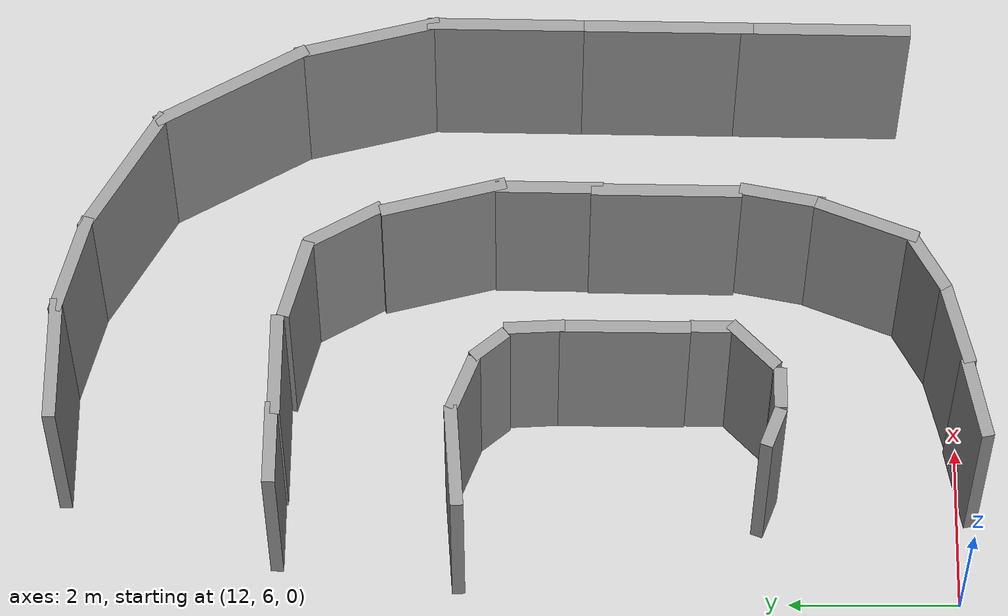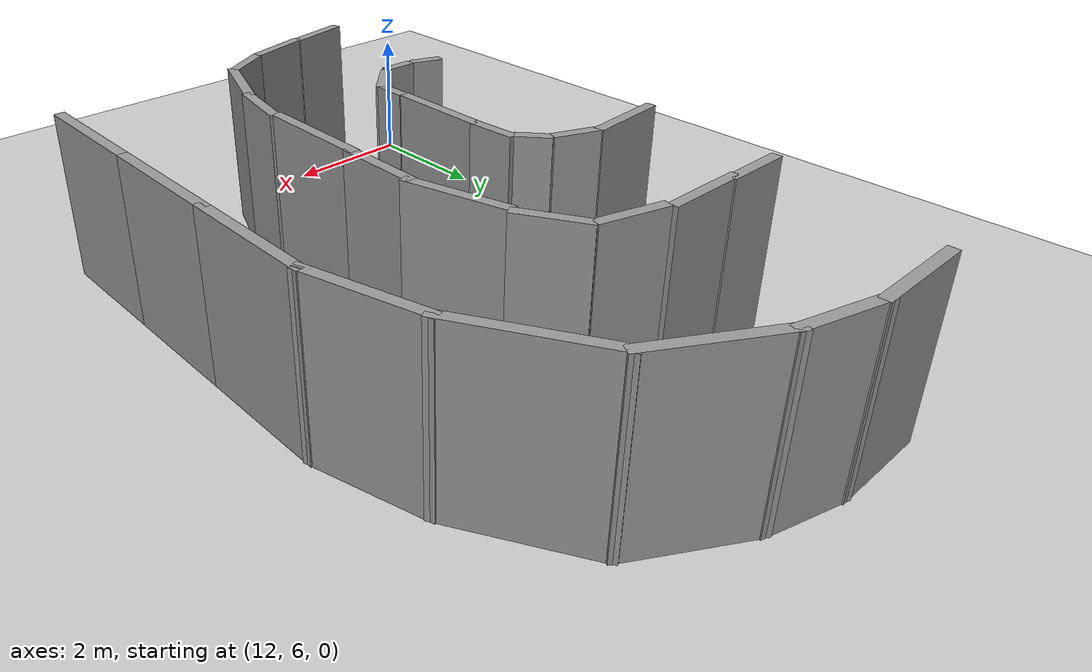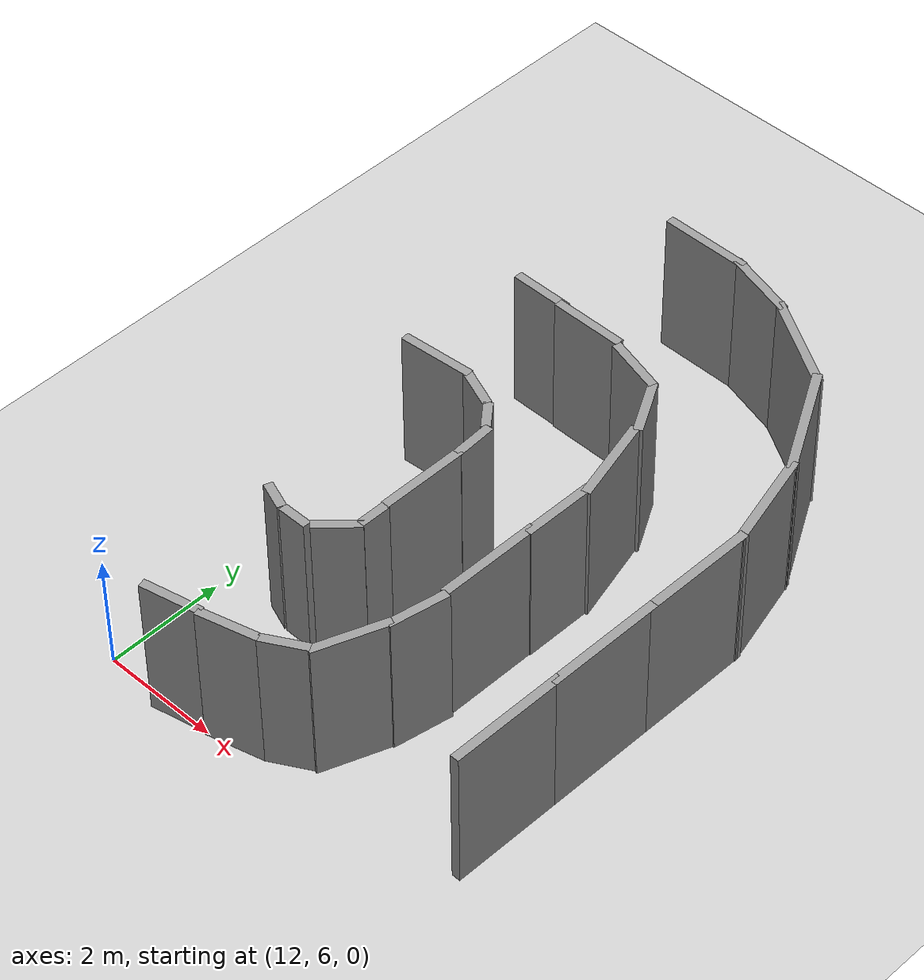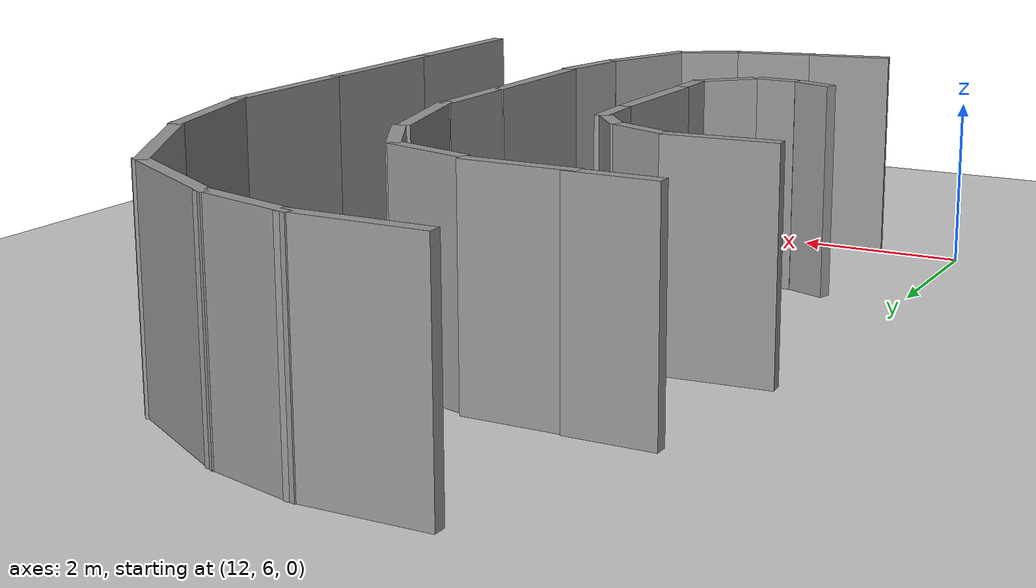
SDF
<sdf version="1.6">
 <world name="default">
  <model name="ground_plane">
   <static>1</static>
   <link name="link">
    <collision name="collision">
     <geometry><plane><normal>0 0 1</normal><size>100 100</size></plane></geometry>
     <surface><friction><ode><mu>100</mu><mu2>50</mu2></ode></friction></surface>
    </collision>
    <visual name="visual">
     <cast_shadows>0</cast_shadows>
     <geometry><plane><normal>0 0 1</normal><size>100 100</size></plane></geometry>
     <material>
      <script><uri>file://media/materials/scripts/gazebo.material</uri><name>Gazebo/Grey</name></script>
     </material>
    </visual>
   </link>
  </model>
  <model name="c-Snail_v3_clone">
   <link name="Wall_29">
    <pose>10.2991 1.24294 0 0 -0 1.5708</pose>
    <visual name="Wall_29_Visual">
     <pose>0 0 1.25 0 -0 0</pose>
     <geometry><box><size>1.5 0.15 2.5</size></box></geometry>
     <material>
      <script><uri>file://media/materials/scripts/gazebo.material</uri><name>Gazebo/Grey</name></script>
      <ambient>1 1 1 1</ambient>
     </material>
     <meta><layer>0</layer></meta>
    </visual>
    <collision name="Wall_29_Collision">
     <pose>0 0 1.25 0 -0 0</pose>
     <geometry><box><size>1.5 0.15 2.5</size></box></geometry>
     <surface>
      <friction>
       <ode><mu>1</mu><mu2>1</mu2><fdir1>0 0 0</fdir1><slip1>0</slip1><slip2>0</slip2></ode>
       <torsional>
        <coefficient>1</coefficient>
        <patch_radius>0</patch_radius>
        <surface_radius>0</surface_radius>
        <use_patch_radius>1</use_patch_radius>
        <ode><slip>0</slip></ode>
       </torsional>
      </friction>
      <bounce><restitution_coefficient>0</restitution_coefficient><threshold>1e+06</threshold></bounce>
      <contact>
       <collide_without_contact>0</collide_without_contact>
       <collide_without_contact_bitmask>1</collide_without_contact_bitmask>
       <collide_bitmask>1</collide_bitmask>
       <ode>
        <soft_cfm>0</soft_cfm>
        <soft_erp>0.2</soft_erp>
        <kp>1e+13</kp>
        <kd>1</kd>
        <max_vel>0.01</max_vel>
        <min_depth>0</min_depth>
       </ode>
       <bullet>
        <split_impulse>1</split_impulse>
        <split_impulse_penetration_threshold>-0.01</split_impulse_penetration_threshold>
        <soft_cfm>0</soft_cfm>
        <soft_erp>0.2</soft_erp>
        <kp>1e+13</kp>
        <kd>1</kd>
       </bullet>
      </contact>
     </surface>
    </collision>
   </link>
   <link name="Wall_30">
    <pose>10.1568 2.4492 0 0 -0 1.8326</pose>
    <visual name="Wall_30_Visual">
     <pose>0 0 1.25 0 -0 0</pose>
     <geometry><box><size>1.25 0.15 2.5</size></box></geometry>
     <material>
      <script><uri>file://media/materials/scripts/gazebo.material</uri><name>Gazebo/Grey</name></script>
      <ambient>1 1 1 1</ambient>
     </material>
     <meta><layer>0</layer></meta>
    </visual>
    <collision name="Wall_30_Collision">
     <pose>0 0 1.25 0 -0 0</pose>
     <geometry><box><size>1.25 0.15 2.5</size></box></geometry>
     <surface>
      <friction>
       <ode><mu>1</mu><mu2>1</mu2><fdir1>0 0 0</fdir1><slip1>0</slip1><slip2>0</slip2></ode>
       <torsional>
        <coefficient>1</coefficient>
        <patch_radius>0</patch_radius>
        <surface_radius>0</surface_radius>
        <use_patch_radius>1</use_patch_radius>
        <ode><slip>0</slip></ode>
       </torsional>
      </friction>
      <bounce><restitution_coefficient>0</restitution_coefficient><threshold>1e+06</threshold></bounce>
      <contact>
       <collide_without_contact>0</collide_without_contact>
       <collide_without_contact_bitmask>1</collide_without_contact_bitmask>
       <collide_bitmask>1</collide_bitmask>
       <ode>
        <soft_cfm>0</soft_cfm>
        <soft_erp>0.2</soft_erp>
        <kp>1e+13</kp>
        <kd>1</kd>
        <max_vel>0.01</max_vel>
        <min_depth>0</min_depth>
       </ode>
       <bullet>
        <split_impulse>1</split_impulse>
        <split_impulse_penetration_threshold>-0.01</split_impulse_penetration_threshold>
        <soft_cfm>0</soft_cfm>
        <soft_erp>0.2</soft_erp>
        <kp>1e+13</kp>
        <kd>1</kd>
       </bullet>
      </contact>
     </surface>
    </collision>
   </link>
   <link name="Wall_31">
    <pose>9.61441 3.67328 0 0 -0 2.0944</pose>
    <visual name="Wall_31_Visual">
     <pose>0 0 1.25 0 -0 0</pose>
     <geometry><box><size>1.75 0.15 2.5</size></box></geometry>
     <material>
      <script><uri>file://media/materials/scripts/gazebo.material</uri><name>Gazebo/Grey</name></script>
      <ambient>1 1 1 1</ambient>
     </material>
     <meta><layer>0</layer></meta>
    </visual>
    <collision name="Wall_31_Collision">
     <pose>0 0 1.25 0 -0 0</pose>
     <geometry><box><size>1.75 0.15 2.5</size></box></geometry>
     <surface>
      <friction>
       <ode><mu>1</mu><mu2>1</mu2><fdir1>0 0 0</fdir1><slip1>0</slip1><slip2>0</slip2></ode>
       <torsional>
        <coefficient>1</coefficient>
        <patch_radius>0</patch_radius>
        <surface_radius>0</surface_radius>
        <use_patch_radius>1</use_patch_radius>
        <ode><slip>0</slip></ode>
       </torsional>
      </friction>
      <bounce><restitution_coefficient>0</restitution_coefficient><threshold>1e+06</threshold></bounce>
      <contact>
       <collide_without_contact>0</collide_without_contact>
       <collide_without_contact_bitmask>1</collide_without_contact_bitmask>
       <collide_bitmask>1</collide_bitmask>
       <ode>
        <soft_cfm>0</soft_cfm>
        <soft_erp>0.2</soft_erp>
        <kp>1e+13</kp>
        <kd>1</kd>
        <max_vel>0.01</max_vel>
        <min_depth>0</min_depth>
       </ode>
       <bullet>
        <split_impulse>1</split_impulse>
        <split_impulse_penetration_threshold>-0.01</split_impulse_penetration_threshold>
        <soft_cfm>0</soft_cfm>
        <soft_erp>0.2</soft_erp>
        <kp>1e+13</kp>
        <kd>1</kd>
       </bullet>
      </contact>
     </surface>
    </collision>
   </link>
   <link name="Wall_32">
    <pose>8.41334 4.8286 0 0 -0 2.61799</pose>
    <visual name="Wall_32_Visual">
     <pose>0 0 1.25 0 -0 0</pose>
     <geometry><box><size>2 0.15 2.5</size></box></geometry>
     <material>
      <script><uri>file://media/materials/scripts/gazebo.material</uri><name>Gazebo/Grey</name></script>
      <ambient>1 1 1 1</ambient>
     </material>
     <meta><layer>0</layer></meta>
    </visual>
    <collision name="Wall_32_Collision">
     <pose>0 0 1.25 0 -0 0</pose>
     <geometry><box><size>2 0.15 2.5</size></box></geometry>
     <surface>
      <friction>
       <ode><mu>1</mu><mu2>1</mu2><fdir1>0 0 0</fdir1><slip1>0</slip1><slip2>0</slip2></ode>
       <torsional>
        <coefficient>1</coefficient>
        <patch_radius>0</patch_radius>
        <surface_radius>0</surface_radius>
        <use_patch_radius>1</use_patch_radius>
        <ode><slip>0</slip></ode>
       </torsional>
      </friction>
      <bounce><restitution_coefficient>0</restitution_coefficient><threshold>1e+06</threshold></bounce>
      <contact>
       <collide_without_contact>0</collide_without_contact>
       <collide_without_contact_bitmask>1</collide_without_contact_bitmask>
       <collide_bitmask>1</collide_bitmask>
       <ode>
        <soft_cfm>0</soft_cfm>
        <soft_erp>0.2</soft_erp>
        <kp>1e+13</kp>
        <kd>1</kd>
        <max_vel>0.01</max_vel>
        <min_depth>0</min_depth>
       </ode>
       <bullet>
        <split_impulse>1</split_impulse>
        <split_impulse_penetration_threshold>-0.01</split_impulse_penetration_threshold>
        <soft_cfm>0</soft_cfm>
        <soft_erp>0.2</soft_erp>
        <kp>1e+13</kp>
        <kd>1</kd>
       </bullet>
      </contact>
     </surface>
    </collision>
   </link>
   <link name="Wall_33">
    <pose>6.83952 5.49815 0 0 -0 2.87979</pose>
    <visual name="Wall_33_Visual">
     <pose>0 0 1.25 0 -0 0</pose>
     <geometry><box><size>1.75 0.15 2.5</size></box></geometry>
     <material>
      <script><uri>file://media/materials/scripts/gazebo.material</uri><name>Gazebo/Grey</name></script>
      <ambient>1 1 1 1</ambient>
     </material>
     <meta><layer>0</layer></meta>
    </visual>
    <collision name="Wall_33_Collision">
     <pose>0 0 1.25 0 -0 0</pose>
     <geometry><box><size>1.75 0.15 2.5</size></box></geometry>
     <surface>
      <friction>
       <ode><mu>1</mu><mu2>1</mu2><fdir1>0 0 0</fdir1><slip1>0</slip1><slip2>0</slip2></ode>
       <torsional>
        <coefficient>1</coefficient>
        <patch_radius>0</patch_radius>
        <surface_radius>0</surface_radius>
        <use_patch_radius>1</use_patch_radius>
        <ode><slip>0</slip></ode>
       </torsional>
      </friction>
      <bounce><restitution_coefficient>0</restitution_coefficient><threshold>1e+06</threshold></bounce>
      <contact>
       <collide_without_contact>0</collide_without_contact>
       <collide_without_contact_bitmask>1</collide_without_contact_bitmask>
       <collide_bitmask>1</collide_bitmask>
       <ode>
        <soft_cfm>0</soft_cfm>
        <soft_erp>0.2</soft_erp>
        <kp>1e+13</kp>
        <kd>1</kd>
        <max_vel>0.01</max_vel>
        <min_depth>0</min_depth>
       </ode>
       <bullet>
        <split_impulse>1</split_impulse>
        <split_impulse_penetration_threshold>-0.01</split_impulse_penetration_threshold>
        <soft_cfm>0</soft_cfm>
        <soft_erp>0.2</soft_erp>
        <kp>1e+13</kp>
        <kd>1</kd>
       </bullet>
      </contact>
     </surface>
    </collision>
   </link>
   <link name="Wall_34">
    <pose>5.14178 5.70521 0 0 -0 3.14159</pose>
    <visual name="Wall_34_Visual">
     <pose>0 0 1.25 0 -0 0</pose>
     <geometry><box><size>2 0.15 2.5</size></box></geometry>
     <material>
      <script><uri>file://media/materials/scripts/gazebo.material</uri><name>Gazebo/Grey</name></script>
      <ambient>1 1 1 1</ambient>
     </material>
     <meta><layer>0</layer></meta>
    </visual>
    <collision name="Wall_34_Collision">
     <pose>0 0 1.25 0 -0 0</pose>
     <geometry><box><size>2 0.15 2.5</size></box></geometry>
     <surface>
      <friction>
       <ode><mu>1</mu><mu2>1</mu2><fdir1>0 0 0</fdir1><slip1>0</slip1><slip2>0</slip2></ode>
       <torsional>
        <coefficient>1</coefficient>
        <patch_radius>0</patch_radius>
        <surface_radius>0</surface_radius>
        <use_patch_radius>1</use_patch_radius>
        <ode><slip>0</slip></ode>
       </torsional>
      </friction>
      <bounce><restitution_coefficient>0</restitution_coefficient><threshold>1e+06</threshold></bounce>
      <contact>
       <collide_without_contact>0</collide_without_contact>
       <collide_without_contact_bitmask>1</collide_without_contact_bitmask>
       <collide_bitmask>1</collide_bitmask>
       <ode>
        <soft_cfm>0</soft_cfm>
        <soft_erp>0.2</soft_erp>
        <kp>1e+13</kp>
        <kd>1</kd>
        <max_vel>0.01</max_vel>
        <min_depth>0</min_depth>
       </ode>
       <bullet>
        <split_impulse>1</split_impulse>
        <split_impulse_penetration_threshold>-0.01</split_impulse_penetration_threshold>
        <soft_cfm>0</soft_cfm>
        <soft_erp>0.2</soft_erp>
        <kp>1e+13</kp>
        <kd>1</kd>
       </bullet>
      </contact>
     </surface>
    </collision>
   </link>
   <link name="Wall_35">
    <pose>3.29178 5.70521 0 0 -0 3.14159</pose>
    <visual name="Wall_35_Visual">
     <pose>0 0 1.25 0 -0 0</pose>
     <geometry><box><size>2 0.15 2.5</size></box></geometry>
     <material>
      <script><uri>file://media/materials/scripts/gazebo.material</uri><name>Gazebo/Grey</name></script>
      <ambient>1 1 1 1</ambient>
     </material>
     <meta><layer>0</layer></meta>
    </visual>
    <collision name="Wall_35_Collision">
     <pose>0 0 1.25 0 -0 0</pose>
     <geometry><box><size>2 0.15 2.5</size></box></geometry>
     <surface>
      <friction>
       <ode><mu>1</mu><mu2>1</mu2><fdir1>0 0 0</fdir1><slip1>0</slip1><slip2>0</slip2></ode>
       <torsional>
        <coefficient>1</coefficient>
        <patch_radius>0</patch_radius>
        <surface_radius>0</surface_radius>
        <use_patch_radius>1</use_patch_radius>
        <ode><slip>0</slip></ode>
       </torsional>
      </friction>
      <bounce><restitution_coefficient>0</restitution_coefficient><threshold>1e+06</threshold></bounce>
      <contact>
       <collide_without_contact>0</collide_without_contact>
       <collide_without_contact_bitmask>1</collide_without_contact_bitmask>
       <collide_bitmask>1</collide_bitmask>
       <ode>
        <soft_cfm>0</soft_cfm>
        <soft_erp>0.2</soft_erp>
        <kp>1e+13</kp>
        <kd>1</kd>
        <max_vel>0.01</max_vel>
        <min_depth>0</min_depth>
       </ode>
       <bullet>
        <split_impulse>1</split_impulse>
        <split_impulse_penetration_threshold>-0.01</split_impulse_penetration_threshold>
        <soft_cfm>0</soft_cfm>
        <soft_erp>0.2</soft_erp>
        <kp>1e+13</kp>
        <kd>1</kd>
       </bullet>
      </contact>
     </surface>
    </collision>
   </link>
   <link name="Wall_36">
    <pose>1.44178 5.70521 0 0 -0 3.14159</pose>
    <visual name="Wall_36_Visual">
     <pose>0 0 1.25 0 -0 0</pose>
     <geometry><box><size>2 0.15 2.5</size></box></geometry>
     <material>
      <script><uri>file://media/materials/scripts/gazebo.material</uri><name>Gazebo/Grey</name></script>
      <ambient>1 1 1 1</ambient>
     </material>
     <meta><layer>0</layer></meta>
    </visual>
    <collision name="Wall_36_Collision">
     <pose>0 0 1.25 0 -0 0</pose>
     <geometry><box><size>2 0.15 2.5</size></box></geometry>
     <surface>
      <friction>
       <ode><mu>1</mu><mu2>1</mu2><fdir1>0 0 0</fdir1><slip1>0</slip1><slip2>0</slip2></ode>
       <torsional>
        <coefficient>1</coefficient>
        <patch_radius>0</patch_radius>
        <surface_radius>0</surface_radius>
        <use_patch_radius>1</use_patch_radius>
        <ode><slip>0</slip></ode>
       </torsional>
      </friction>
      <bounce><restitution_coefficient>0</restitution_coefficient><threshold>1e+06</threshold></bounce>
      <contact>
       <collide_without_contact>0</collide_without_contact>
       <collide_without_contact_bitmask>1</collide_without_contact_bitmask>
       <collide_bitmask>1</collide_bitmask>
       <ode>
        <soft_cfm>0</soft_cfm>
        <soft_erp>0.2</soft_erp>
        <kp>1e+13</kp>
        <kd>1</kd>
        <max_vel>0.01</max_vel>
        <min_depth>0</min_depth>
       </ode>
       <bullet>
        <split_impulse>1</split_impulse>
        <split_impulse_penetration_threshold>-0.01</split_impulse_penetration_threshold>
        <soft_cfm>0</soft_cfm>
        <soft_erp>0.2</soft_erp>
        <kp>1e+13</kp>
        <kd>1</kd>
       </bullet>
      </contact>
     </surface>
    </collision>
   </link>
   <link name="Wall_55">
    <pose>7.78252 0.225208 0 0 -0 1.5708</pose>
    <visual name="Wall_55_Visual">
     <pose>0 0 1.25 0 -0 0</pose>
     <geometry><box><size>1 0.15 2.5</size></box></geometry>
     <material>
      <script><uri>file://media/materials/scripts/gazebo.material</uri><name>Gazebo/Grey</name></script>
      <ambient>1 1 1 1</ambient>
     </material>
     <meta><layer>0</layer></meta>
    </visual>
    <collision name="Wall_55_Collision">
     <pose>0 0 1.25 0 -0 0</pose>
     <geometry><box><size>1 0.15 2.5</size></box></geometry>
     <surface>
      <friction>
       <ode><mu>1</mu><mu2>1</mu2><fdir1>0 0 0</fdir1><slip1>0</slip1><slip2>0</slip2></ode>
       <torsional>
        <coefficient>1</coefficient>
        <patch_radius>0</patch_radius>
        <surface_radius>0</surface_radius>
        <use_patch_radius>1</use_patch_radius>
        <ode><slip>0</slip></ode>
       </torsional>
      </friction>
      <bounce><restitution_coefficient>0</restitution_coefficient><threshold>1e+06</threshold></bounce>
      <contact>
       <collide_without_contact>0</collide_without_contact>
       <collide_without_contact_bitmask>1</collide_without_contact_bitmask>
       <collide_bitmask>1</collide_bitmask>
       <ode>
        <soft_cfm>0</soft_cfm>
        <soft_erp>0.2</soft_erp>
        <kp>1e+13</kp>
        <kd>1</kd>
        <max_vel>0.01</max_vel>
        <min_depth>0</min_depth>
       </ode>
       <bullet>
        <split_impulse>1</split_impulse>
        <split_impulse_penetration_threshold>-0.01</split_impulse_penetration_threshold>
        <soft_cfm>0</soft_cfm>
        <soft_erp>0.2</soft_erp>
        <kp>1e+13</kp>
        <kd>1</kd>
       </bullet>
      </contact>
     </surface>
    </collision>
   </link>
   <link name="Wall_56">
    <pose>7.75985 1.20021 0 0 -0 1.5708</pose>
    <visual name="Wall_56_Visual">
     <pose>0 0 1.25 0 -0 0</pose>
     <geometry><box><size>1.25 0.15 2.5</size></box></geometry>
     <material>
      <script><uri>file://media/materials/scripts/gazebo.material</uri><name>Gazebo/Grey</name></script>
      <ambient>1 1 1 1</ambient>
     </material>
     <meta><layer>0</layer></meta>
    </visual>
    <collision name="Wall_56_Collision">
     <pose>0 0 1.25 0 -0 0</pose>
     <geometry><box><size>1.25 0.15 2.5</size></box></geometry>
     <surface>
      <friction>
       <ode><mu>1</mu><mu2>1</mu2><fdir1>0 0 0</fdir1><slip1>0</slip1><slip2>0</slip2></ode>
       <torsional>
        <coefficient>1</coefficient>
        <patch_radius>0</patch_radius>
        <surface_radius>0</surface_radius>
        <use_patch_radius>1</use_patch_radius>
        <ode><slip>0</slip></ode>
       </torsional>
      </friction>
      <bounce><restitution_coefficient>0</restitution_coefficient><threshold>1e+06</threshold></bounce>
      <contact>
       <collide_without_contact>0</collide_without_contact>
       <collide_without_contact_bitmask>1</collide_without_contact_bitmask>
       <collide_bitmask>1</collide_bitmask>
       <ode>
        <soft_cfm>0</soft_cfm>
        <soft_erp>0.2</soft_erp>
        <kp>1e+13</kp>
        <kd>1</kd>
        <max_vel>0.01</max_vel>
        <min_depth>0</min_depth>
       </ode>
       <bullet>
        <split_impulse>1</split_impulse>
        <split_impulse_penetration_threshold>-0.01</split_impulse_penetration_threshold>
        <soft_cfm>0</soft_cfm>
        <soft_erp>0.2</soft_erp>
        <kp>1e+13</kp>
        <kd>1</kd>
       </bullet>
      </contact>
     </surface>
    </collision>
   </link>
   <link name="Wall_57">
    <pose>7.56918 2.29911 0 0 -0 1.8326</pose>
    <visual name="Wall_57_Visual">
     <pose>0 0 1.25 0 -0 0</pose>
     <geometry><box><size>1 0.15 2.5</size></box></geometry>
     <material>
      <script><uri>file://media/materials/scripts/gazebo.material</uri><name>Gazebo/Grey</name></script>
      <ambient>1 1 1 1</ambient>
     </material>
     <meta><layer>0</layer></meta>
    </visual>
    <collision name="Wall_57_Collision">
     <pose>0 0 1.25 0 -0 0</pose>
     <geometry><box><size>1 0.15 2.5</size></box></geometry>
     <surface>
      <friction>
       <ode><mu>1</mu><mu2>1</mu2><fdir1>0 0 0</fdir1><slip1>0</slip1><slip2>0</slip2></ode>
       <torsional>
        <coefficient>1</coefficient>
        <patch_radius>0</patch_radius>
        <surface_radius>0</surface_radius>
        <use_patch_radius>1</use_patch_radius>
        <ode><slip>0</slip></ode>
       </torsional>
      </friction>
      <bounce><restitution_coefficient>0</restitution_coefficient><threshold>1e+06</threshold></bounce>
      <contact>
       <collide_without_contact>0</collide_without_contact>
       <collide_without_contact_bitmask>1</collide_without_contact_bitmask>
       <collide_bitmask>1</collide_bitmask>
       <ode>
        <soft_cfm>0</soft_cfm>
        <soft_erp>0.2</soft_erp>
        <kp>1e+13</kp>
        <kd>1</kd>
        <max_vel>0.01</max_vel>
        <min_depth>0</min_depth>
       </ode>
       <bullet>
        <split_impulse>1</split_impulse>
        <split_impulse_penetration_threshold>-0.01</split_impulse_penetration_threshold>
        <soft_cfm>0</soft_cfm>
        <soft_erp>0.2</soft_erp>
        <kp>1e+13</kp>
        <kd>1</kd>
       </bullet>
      </contact>
     </surface>
    </collision>
   </link>
   <link name="Wall_58">
    <pose>7.036 3.00803 0 0 -0 2.61799</pose>
    <visual name="Wall_58_Visual">
     <pose>0 0 1.25 0 -0 0</pose>
     <geometry><box><size>1 0.15 2.5</size></box></geometry>
     <material>
      <script><uri>file://media/materials/scripts/gazebo.material</uri><name>Gazebo/Grey</name></script>
      <ambient>1 1 1 1</ambient>
     </material>
     <meta><layer>0</layer></meta>
    </visual>
    <collision name="Wall_58_Collision">
     <pose>0 0 1.25 0 -0 0</pose>
     <geometry><box><size>1 0.15 2.5</size></box></geometry>
     <surface>
      <friction>
       <ode><mu>1</mu><mu2>1</mu2><fdir1>0 0 0</fdir1><slip1>0</slip1><slip2>0</slip2></ode>
       <torsional>
        <coefficient>1</coefficient>
        <patch_radius>0</patch_radius>
        <surface_radius>0</surface_radius>
        <use_patch_radius>1</use_patch_radius>
        <ode><slip>0</slip></ode>
       </torsional>
      </friction>
      <bounce><restitution_coefficient>0</restitution_coefficient><threshold>1e+06</threshold></bounce>
      <contact>
       <collide_without_contact>0</collide_without_contact>
       <collide_without_contact_bitmask>1</collide_without_contact_bitmask>
       <collide_bitmask>1</collide_bitmask>
       <ode>
        <soft_cfm>0</soft_cfm>
        <soft_erp>0.2</soft_erp>
        <kp>1e+13</kp>
        <kd>1</kd>
        <max_vel>0.01</max_vel>
        <min_depth>0</min_depth>
       </ode>
       <bullet>
        <split_impulse>1</split_impulse>
        <split_impulse_penetration_threshold>-0.01</split_impulse_penetration_threshold>
        <soft_cfm>0</soft_cfm>
        <soft_erp>0.2</soft_erp>
        <kp>1e+13</kp>
        <kd>1</kd>
       </bullet>
      </contact>
     </surface>
    </collision>
   </link>
   <link name="Wall_59">
    <pose>5.90215 3.39004 0 0 -0 2.87979</pose>
    <visual name="Wall_59_Visual">
     <pose>0 0 1.25 0 -0 0</pose>
     <geometry><box><size>1.5 0.15 2.5</size></box></geometry>
     <material>
      <script><uri>file://media/materials/scripts/gazebo.material</uri><name>Gazebo/Grey</name></script>
      <ambient>1 1 1 1</ambient>
     </material>
     <meta><layer>0</layer></meta>
    </visual>
    <collision name="Wall_59_Collision">
     <pose>0 0 1.25 0 -0 0</pose>
     <geometry><box><size>1.5 0.15 2.5</size></box></geometry>
     <surface>
      <friction>
       <ode><mu>1</mu><mu2>1</mu2><fdir1>0 0 0</fdir1><slip1>0</slip1><slip2>0</slip2></ode>
       <torsional>
        <coefficient>1</coefficient>
        <patch_radius>0</patch_radius>
        <surface_radius>0</surface_radius>
        <use_patch_radius>1</use_patch_radius>
        <ode><slip>0</slip></ode>
       </torsional>
      </friction>
      <bounce><restitution_coefficient>0</restitution_coefficient><threshold>1e+06</threshold></bounce>
      <contact>
       <collide_without_contact>0</collide_without_contact>
       <collide_without_contact_bitmask>1</collide_without_contact_bitmask>
       <collide_bitmask>1</collide_bitmask>
       <ode>
        <soft_cfm>0</soft_cfm>
        <soft_erp>0.2</soft_erp>
        <kp>1e+13</kp>
        <kd>1</kd>
        <max_vel>0.01</max_vel>
        <min_depth>0</min_depth>
       </ode>
       <bullet>
        <split_impulse>1</split_impulse>
        <split_impulse_penetration_threshold>-0.01</split_impulse_penetration_threshold>
        <soft_cfm>0</soft_cfm>
        <soft_erp>0.2</soft_erp>
        <kp>1e+13</kp>
        <kd>1</kd>
       </bullet>
      </contact>
     </surface>
    </collision>
   </link>
   <link name="Wall_60">
    <pose>4.67122 3.53706 0 0 -0 3.14159</pose>
    <visual name="Wall_60_Visual">
     <pose>0 0 1.25 0 -0 0</pose>
     <geometry><box><size>1.25 0.15 2.5</size></box></geometry>
     <material>
      <script><uri>file://media/materials/scripts/gazebo.material</uri><name>Gazebo/Grey</name></script>
      <ambient>1 1 1 1</ambient>
     </material>
     <meta><layer>0</layer></meta>
    </visual>
    <collision name="Wall_60_Collision">
     <pose>0 0 1.25 0 -0 0</pose>
     <geometry><box><size>1.25 0.15 2.5</size></box></geometry>
     <surface>
      <friction>
       <ode><mu>1</mu><mu2>1</mu2><fdir1>0 0 0</fdir1><slip1>0</slip1><slip2>0</slip2></ode>
       <torsional>
        <coefficient>1</coefficient>
        <patch_radius>0</patch_radius>
        <surface_radius>0</surface_radius>
        <use_patch_radius>1</use_patch_radius>
        <ode><slip>0</slip></ode>
       </torsional>
      </friction>
      <bounce><restitution_coefficient>0</restitution_coefficient><threshold>1e+06</threshold></bounce>
      <contact>
       <collide_without_contact>0</collide_without_contact>
       <collide_without_contact_bitmask>1</collide_without_contact_bitmask>
       <collide_bitmask>1</collide_bitmask>
       <ode>
        <soft_cfm>0</soft_cfm>
        <soft_erp>0.2</soft_erp>
        <kp>1e+13</kp>
        <kd>1</kd>
        <max_vel>0.01</max_vel>
        <min_depth>0</min_depth>
       </ode>
       <bullet>
        <split_impulse>1</split_impulse>
        <split_impulse_penetration_threshold>-0.01</split_impulse_penetration_threshold>
        <soft_cfm>0</soft_cfm>
        <soft_erp>0.2</soft_erp>
        <kp>1e+13</kp>
        <kd>1</kd>
       </bullet>
      </contact>
     </surface>
    </collision>
   </link>
   <link name="Wall_61">
    <pose>3.31404 3.52063 0 0 -0 3.14159</pose>
    <visual name="Wall_61_Visual">
     <pose>0 0 1.25 0 -0 0</pose>
     <geometry><box><size>1.75 0.15 2.5</size></box></geometry>
     <material>
      <script><uri>file://media/materials/scripts/gazebo.material</uri><name>Gazebo/Grey</name></script>
      <ambient>1 1 1 1</ambient>
     </material>
     <meta><layer>0</layer></meta>
    </visual>
    <collision name="Wall_61_Collision">
     <pose>0 0 1.25 0 -0 0</pose>
     <geometry><box><size>1.75 0.15 2.5</size></box></geometry>
     <surface>
      <friction>
       <ode><mu>1</mu><mu2>1</mu2><fdir1>0 0 0</fdir1><slip1>0</slip1><slip2>0</slip2></ode>
       <torsional>
        <coefficient>1</coefficient>
        <patch_radius>0</patch_radius>
        <surface_radius>0</surface_radius>
        <use_patch_radius>1</use_patch_radius>
        <ode><slip>0</slip></ode>
       </torsional>
      </friction>
      <bounce><restitution_coefficient>0</restitution_coefficient><threshold>1e+06</threshold></bounce>
      <contact>
       <collide_without_contact>0</collide_without_contact>
       <collide_without_contact_bitmask>1</collide_without_contact_bitmask>
       <collide_bitmask>1</collide_bitmask>
       <ode>
        <soft_cfm>0</soft_cfm>
        <soft_erp>0.2</soft_erp>
        <kp>1e+13</kp>
        <kd>1</kd>
        <max_vel>0.01</max_vel>
        <min_depth>0</min_depth>
       </ode>
       <bullet>
        <split_impulse>1</split_impulse>
        <split_impulse_penetration_threshold>-0.01</split_impulse_penetration_threshold>
        <soft_cfm>0</soft_cfm>
        <soft_erp>0.2</soft_erp>
        <kp>1e+13</kp>
        <kd>1</kd>
       </bullet>
      </contact>
     </surface>
    </collision>
   </link>
   <link name="Wall_62">
    <pose>1.97453 3.47402 0 0 0 -2.96184</pose>
    <visual name="Wall_62_Visual">
     <pose>0 0 1.25 0 -0 0</pose>
     <geometry><box><size>1 0.15 2.5</size></box></geometry>
     <material>
      <script><uri>file://media/materials/scripts/gazebo.material</uri><name>Gazebo/Grey</name></script>
      <ambient>1 1 1 1</ambient>
     </material>
     <meta><layer>0</layer></meta>
    </visual>
    <collision name="Wall_62_Collision">
     <pose>0 0 1.25 0 -0 0</pose>
     <geometry><box><size>1 0.15 2.5</size></box></geometry>
     <surface>
      <friction>
       <ode><mu>1</mu><mu2>1</mu2><fdir1>0 0 0</fdir1><slip1>0</slip1><slip2>0</slip2></ode>
       <torsional>
        <coefficient>1</coefficient>
        <patch_radius>0</patch_radius>
        <surface_radius>0</surface_radius>
        <use_patch_radius>1</use_patch_radius>
        <ode><slip>0</slip></ode>
       </torsional>
      </friction>
      <bounce><restitution_coefficient>0</restitution_coefficient><threshold>1e+06</threshold></bounce>
      <contact>
       <collide_without_contact>0</collide_without_contact>
       <collide_without_contact_bitmask>1</collide_without_contact_bitmask>
       <collide_bitmask>1</collide_bitmask>
       <ode>
        <soft_cfm>0</soft_cfm>
        <soft_erp>0.2</soft_erp>
        <kp>1e+13</kp>
        <kd>1</kd>
        <max_vel>0.01</max_vel>
        <min_depth>0</min_depth>
       </ode>
       <bullet>
        <split_impulse>1</split_impulse>
        <split_impulse_penetration_threshold>-0.01</split_impulse_penetration_threshold>
        <soft_cfm>0</soft_cfm>
        <soft_erp>0.2</soft_erp>
        <kp>1e+13</kp>
        <kd>1</kd>
       </bullet>
      </contact>
     </surface>
    </collision>
   </link>
   <link name="Wall_63">
    <pose>0.99614 3.17664 0 0 0 -2.78252</pose>
    <visual name="Wall_63_Visual">
     <pose>0 0 1.25 0 -0 0</pose>
     <geometry><box><size>1.25 0.15 2.5</size></box></geometry>
     <material>
      <script><uri>file://media/materials/scripts/gazebo.material</uri><name>Gazebo/Grey</name></script>
      <ambient>1 1 1 1</ambient>
     </material>
     <meta><layer>0</layer></meta>
    </visual>
    <collision name="Wall_63_Collision">
     <pose>0 0 1.25 0 -0 0</pose>
     <geometry><box><size>1.25 0.15 2.5</size></box></geometry>
     <surface>
      <friction>
       <ode><mu>1</mu><mu2>1</mu2><fdir1>0 0 0</fdir1><slip1>0</slip1><slip2>0</slip2></ode>
       <torsional>
        <coefficient>1</coefficient>
        <patch_radius>0</patch_radius>
        <surface_radius>0</surface_radius>
        <use_patch_radius>1</use_patch_radius>
        <ode><slip>0</slip></ode>
       </torsional>
      </friction>
      <bounce><restitution_coefficient>0</restitution_coefficient><threshold>1e+06</threshold></bounce>
      <contact>
       <collide_without_contact>0</collide_without_contact>
       <collide_without_contact_bitmask>1</collide_without_contact_bitmask>
       <collide_bitmask>1</collide_bitmask>
       <ode>
        <soft_cfm>0</soft_cfm>
        <soft_erp>0.2</soft_erp>
        <kp>1e+13</kp>
        <kd>1</kd>
        <max_vel>0.01</max_vel>
        <min_depth>0</min_depth>
       </ode>
       <bullet>
        <split_impulse>1</split_impulse>
        <split_impulse_penetration_threshold>-0.01</split_impulse_penetration_threshold>
        <soft_cfm>0</soft_cfm>
        <soft_erp>0.2</soft_erp>
        <kp>1e+13</kp>
        <kd>1</kd>
       </bullet>
      </contact>
     </surface>
    </collision>
   </link>
   <link name="Wall_64">
    <pose>0.28704 2.63 0 0 0 -2.0944</pose>
    <visual name="Wall_64_Visual">
     <pose>0 0 1.25 0 -0 0</pose>
     <geometry><box><size>0.75 0.15 2.5</size></box></geometry>
     <material>
      <script><uri>file://media/materials/scripts/gazebo.material</uri><name>Gazebo/Grey</name></script>
      <ambient>1 1 1 1</ambient>
     </material>
     <meta><layer>0</layer></meta>
    </visual>
    <collision name="Wall_64_Collision">
     <pose>0 0 1.25 0 -0 0</pose>
     <geometry><box><size>0.75 0.15 2.5</size></box></geometry>
     <surface>
      <friction>
       <ode><mu>1</mu><mu2>1</mu2><fdir1>0 0 0</fdir1><slip1>0</slip1><slip2>0</slip2></ode>
       <torsional>
        <coefficient>1</coefficient>
        <patch_radius>0</patch_radius>
        <surface_radius>0</surface_radius>
        <use_patch_radius>1</use_patch_radius>
        <ode><slip>0</slip></ode>
       </torsional>
      </friction>
      <bounce><restitution_coefficient>0</restitution_coefficient><threshold>1e+06</threshold></bounce>
      <contact>
       <collide_without_contact>0</collide_without_contact>
       <collide_without_contact_bitmask>1</collide_without_contact_bitmask>
       <collide_bitmask>1</collide_bitmask>
       <ode>
        <soft_cfm>0</soft_cfm>
        <soft_erp>0.2</soft_erp>
        <kp>1e+13</kp>
        <kd>1</kd>
        <max_vel>0.01</max_vel>
        <min_depth>0</min_depth>
       </ode>
       <bullet>
        <split_impulse>1</split_impulse>
        <split_impulse_penetration_threshold>-0.01</split_impulse_penetration_threshold>
        <soft_cfm>0</soft_cfm>
        <soft_erp>0.2</soft_erp>
        <kp>1e+13</kp>
        <kd>1</kd>
       </bullet>
      </contact>
     </surface>
    </collision>
   </link>
   <link name="Wall_65">
    <pose>-0.020213 1.84319 0 0 0 -1.8326</pose>
    <visual name="Wall_65_Visual">
     <pose>0 0 1.25 0 -0 0</pose>
     <geometry><box><size>1 0.15 2.5</size></box></geometry>
     <material>
      <script><uri>file://media/materials/scripts/gazebo.material</uri><name>Gazebo/Grey</name></script>
      <ambient>1 1 1 1</ambient>
     </material>
     <meta><layer>0</layer></meta>
    </visual>
    <collision name="Wall_65_Collision">
     <pose>0 0 1.25 0 -0 0</pose>
     <geometry><box><size>1 0.15 2.5</size></box></geometry>
     <surface>
      <friction>
       <ode><mu>1</mu><mu2>1</mu2><fdir1>0 0 0</fdir1><slip1>0</slip1><slip2>0</slip2></ode>
       <torsional>
        <coefficient>1</coefficient>
        <patch_radius>0</patch_radius>
        <surface_radius>0</surface_radius>
        <use_patch_radius>1</use_patch_radius>
        <ode><slip>0</slip></ode>
       </torsional>
      </friction>
      <bounce><restitution_coefficient>0</restitution_coefficient><threshold>1e+06</threshold></bounce>
      <contact>
       <collide_without_contact>0</collide_without_contact>
       <collide_without_contact_bitmask>1</collide_without_contact_bitmask>
       <collide_bitmask>1</collide_bitmask>
       <ode>
        <soft_cfm>0</soft_cfm>
        <soft_erp>0.2</soft_erp>
        <kp>1e+13</kp>
        <kd>1</kd>
        <max_vel>0.01</max_vel>
        <min_depth>0</min_depth>
       </ode>
       <bullet>
        <split_impulse>1</split_impulse>
        <split_impulse_penetration_threshold>-0.01</split_impulse_penetration_threshold>
        <soft_cfm>0</soft_cfm>
        <soft_erp>0.2</soft_erp>
        <kp>1e+13</kp>
        <kd>1</kd>
       </bullet>
      </contact>
     </surface>
    </collision>
   </link>
   <link name="Wall_66">
    <pose>-0.21942 0.921775 0 0 0 -1.79109</pose>
    <visual name="Wall_66_Visual">
     <pose>0 0 1.25 0 -0 0</pose>
     <geometry><box><size>1 0.15 2.5</size></box></geometry>
     <material>
      <script><uri>file://media/materials/scripts/gazebo.material</uri><name>Gazebo/Grey</name></script>
      <ambient>1 1 1 1</ambient>
     </material>
     <meta><layer>0</layer></meta>
    </visual>
    <collision name="Wall_66_Collision">
     <pose>0 0 1.25 0 -0 0</pose>
     <geometry><box><size>1 0.15 2.5</size></box></geometry>
     <surface>
      <friction>
       <ode><mu>1</mu><mu2>1</mu2><fdir1>0 0 0</fdir1><slip1>0</slip1><slip2>0</slip2></ode>
       <torsional>
        <coefficient>1</coefficient>
        <patch_radius>0</patch_radius>
        <surface_radius>0</surface_radius>
        <use_patch_radius>1</use_patch_radius>
        <ode><slip>0</slip></ode>
       </torsional>
      </friction>
      <bounce><restitution_coefficient>0</restitution_coefficient><threshold>1e+06</threshold></bounce>
      <contact>
       <collide_without_contact>0</collide_without_contact>
       <collide_without_contact_bitmask>1</collide_without_contact_bitmask>
       <collide_bitmask>1</collide_bitmask>
       <ode>
        <soft_cfm>0</soft_cfm>
        <soft_erp>0.2</soft_erp>
        <kp>1e+13</kp>
        <kd>1</kd>
        <max_vel>0.01</max_vel>
        <min_depth>0</min_depth>
       </ode>
       <bullet>
        <split_impulse>1</split_impulse>
        <split_impulse_penetration_threshold>-0.01</split_impulse_penetration_threshold>
        <soft_cfm>0</soft_cfm>
        <soft_erp>0.2</soft_erp>
        <kp>1e+13</kp>
        <kd>1</kd>
       </bullet>
      </contact>
     </surface>
    </collision>
   </link>
   <link name="Wall_71_clone">
    <pose>3.78048 1.74575 0 0 -0 3.13791</pose>
    <visual name="Wall_71_Visual">
     <pose>0 0 1.25 0 -0 0</pose>
     <geometry><box><size>1.5 0.15 2.5</size></box></geometry>
     <material>
      <script><uri>file://media/materials/scripts/gazebo.material</uri><name>Gazebo/Grey</name></script>
      <ambient>1 1 1 1</ambient>
      <shader type="pixel"/>
     </material>
     <meta><layer>0</layer></meta>
    </visual>
    <collision name="Wall_71_Collision">
     <pose>0 0 1.25 0 -0 0</pose>
     <geometry><box><size>1.5 0.15 2.5</size></box></geometry>
     <surface>
      <friction>
       <ode><mu>1</mu><mu2>1</mu2><fdir1>0 0 0</fdir1><slip1>0</slip1><slip2>0</slip2></ode>
       <torsional>
        <coefficient>1</coefficient>
        <patch_radius>0</patch_radius>
        <surface_radius>0</surface_radius>
        <use_patch_radius>1</use_patch_radius>
        <ode><slip>0</slip></ode>
       </torsional>
      </friction>
      <bounce><restitution_coefficient>0</restitution_coefficient><threshold>1e+06</threshold></bounce>
      <contact>
       <collide_without_contact>0</collide_without_contact>
       <collide_without_contact_bitmask>1</collide_without_contact_bitmask>
       <collide_bitmask>1</collide_bitmask>
       <ode>
        <soft_cfm>0</soft_cfm>
        <soft_erp>0.2</soft_erp>
        <kp>1e+13</kp>
        <kd>1</kd>
        <max_vel>0.01</max_vel>
        <min_depth>0</min_depth>
       </ode>
       <bullet>
        <split_impulse>1</split_impulse>
        <split_impulse_penetration_threshold>-0.01</split_impulse_penetration_threshold>
        <soft_cfm>0</soft_cfm>
        <soft_erp>0.2</soft_erp>
        <kp>1e+13</kp>
        <kd>1</kd>
       </bullet>
      </contact>
     </surface>
    </collision>
   </link>
   <link name="Wall_72_clone">
    <pose>5.70761 0.097339 0 0 0 -1.65202</pose>
    <visual name="Wall_72_Visual">
     <pose>0 0 1.25 0 -0 0</pose>
     <geometry><box><size>1.25 0.15 2.5</size></box></geometry>
     <material>
      <script><uri>file://media/materials/scripts/gazebo.material</uri><name>Gazebo/Grey</name></script>
      <ambient>1 1 1 1</ambient>
      <shader type="pixel"/>
     </material>
     <meta><layer>0</layer></meta>
    </visual>
    <collision name="Wall_72_Collision">
     <pose>0 0 1.25 0 -0 0</pose>
     <geometry><box><size>1.25 0.15 2.5</size></box></geometry>
     <surface>
      <friction>
       <ode><mu>1</mu><mu2>1</mu2><fdir1>0 0 0</fdir1><slip1>0</slip1><slip2>0</slip2></ode>
       <torsional>
        <coefficient>1</coefficient>
        <patch_radius>0</patch_radius>
        <surface_radius>0</surface_radius>
        <use_patch_radius>1</use_patch_radius>
        <ode><slip>0</slip></ode>
       </torsional>
      </friction>
      <bounce><restitution_coefficient>0</restitution_coefficient><threshold>1e+06</threshold></bounce>
      <contact>
       <collide_without_contact>0</collide_without_contact>
       <collide_without_contact_bitmask>1</collide_without_contact_bitmask>
       <collide_bitmask>1</collide_bitmask>
       <ode>
        <soft_cfm>0</soft_cfm>
        <soft_erp>0.2</soft_erp>
        <kp>1e+13</kp>
        <kd>1</kd>
        <max_vel>0.01</max_vel>
        <min_depth>0</min_depth>
       </ode>
       <bullet>
        <split_impulse>1</split_impulse>
        <split_impulse_penetration_threshold>-0.01</split_impulse_penetration_threshold>
        <soft_cfm>0</soft_cfm>
        <soft_erp>0.2</soft_erp>
        <kp>1e+13</kp>
        <kd>1</kd>
       </bullet>
      </contact>
     </surface>
    </collision>
   </link>
   <link name="Wall_73_clone_clone">
    <pose>5.62294 1.00373 0 0 -0 1.94012</pose>
    <visual name="Wall_73_Visual">
     <pose>0 0 1.25 0 -0 0</pose>
     <geometry><box><size>0.701928 0.15 2.5</size></box></geometry>
     <material>
      <script><uri>file://media/materials/scripts/gazebo.material</uri><name>Gazebo/Grey</name></script>
      <ambient>1 1 1 1</ambient>
      <shader type="pixel"/>
     </material>
     <meta><layer>0</layer></meta>
    </visual>
    <collision name="Wall_73_Collision">
     <pose>0 0 1.25 0 -0 0</pose>
     <geometry><box><size>0.701928 0.15 2.5</size></box></geometry>
     <surface>
      <friction>
       <ode><mu>1</mu><mu2>1</mu2><fdir1>0 0 0</fdir1><slip1>0</slip1><slip2>0</slip2></ode>
       <torsional>
        <coefficient>1</coefficient>
        <patch_radius>0</patch_radius>
        <surface_radius>0</surface_radius>
        <use_patch_radius>1</use_patch_radius>
        <ode><slip>0</slip></ode>
       </torsional>
      </friction>
      <bounce><restitution_coefficient>0</restitution_coefficient><threshold>1e+06</threshold></bounce>
      <contact>
       <collide_without_contact>0</collide_without_contact>
       <collide_without_contact_bitmask>1</collide_without_contact_bitmask>
       <collide_bitmask>1</collide_bitmask>
       <ode>
        <soft_cfm>0</soft_cfm>
        <soft_erp>0.2</soft_erp>
        <kp>1e+13</kp>
        <kd>1</kd>
        <max_vel>0.01</max_vel>
        <min_depth>0</min_depth>
       </ode>
       <bullet>
        <split_impulse>1</split_impulse>
        <split_impulse_penetration_threshold>-0.01</split_impulse_penetration_threshold>
        <soft_cfm>0</soft_cfm>
        <soft_erp>0.2</soft_erp>
        <kp>1e+13</kp>
        <kd>1</kd>
       </bullet>
      </contact>
     </surface>
    </collision>
   </link>
   <link name="Wall_73_clone_clone_clone">
    <pose>4.81951 1.72477 0 0 0 -0.06667</pose>
    <visual name="Wall_73_Visual">
     <pose>0 0 1.25 0 -0 0</pose>
     <geometry><box><size>0.701928 0.15 2.5</size></box></geometry>
     <material>
      <script><uri>file://media/materials/scripts/gazebo.material</uri><name>Gazebo/Grey</name></script>
      <ambient>1 1 1 1</ambient>
      <shader type="pixel"/>
     </material>
     <meta><layer>0</layer></meta>
    </visual>
    <collision name="Wall_73_Collision">
     <pose>0 0 1.25 0 -0 0</pose>
     <geometry><box><size>0.701928 0.15 2.5</size></box></geometry>
     <surface>
      <friction>
       <ode><mu>1</mu><mu2>1</mu2><fdir1>0 0 0</fdir1><slip1>0</slip1><slip2>0</slip2></ode>
       <torsional>
        <coefficient>1</coefficient>
        <patch_radius>0</patch_radius>
        <surface_radius>0</surface_radius>
        <use_patch_radius>1</use_patch_radius>
        <ode><slip>0</slip></ode>
       </torsional>
      </friction>
      <bounce><restitution_coefficient>0</restitution_coefficient><threshold>1e+06</threshold></bounce>
      <contact>
       <collide_without_contact>0</collide_without_contact>
       <collide_without_contact_bitmask>1</collide_without_contact_bitmask>
       <collide_bitmask>1</collide_bitmask>
       <ode>
        <soft_cfm>0</soft_cfm>
        <soft_erp>0.2</soft_erp>
        <kp>1e+13</kp>
        <kd>1</kd>
        <max_vel>0.01</max_vel>
        <min_depth>0</min_depth>
       </ode>
       <bullet>
        <split_impulse>1</split_impulse>
        <split_impulse_penetration_threshold>-0.01</split_impulse_penetration_threshold>
        <soft_cfm>0</soft_cfm>
        <soft_erp>0.2</soft_erp>
        <kp>1e+13</kp>
        <kd>1</kd>
       </bullet>
      </contact>
     </surface>
    </collision>
   </link>
   <link name="Wall_74">
    <pose>5.32652 1.49493 0 0 -0 2.43922</pose>
    <visual name="Wall_74_Visual">
     <pose>0 0 1.25 0 -0 0</pose>
     <geometry><box><size>0.5 0.15 2.5</size></box></geometry>
     <material>
      <script><uri>file://media/materials/scripts/gazebo.material</uri><name>Gazebo/Grey</name></script>
      <ambient>1 1 1 1</ambient>
     </material>
     <meta><layer>0</layer></meta>
    </visual>
    <collision name="Wall_74_Collision">
     <pose>0 0 1.25 0 -0 0</pose>
     <geometry><box><size>0.5 0.15 2.5</size></box></geometry>
     <surface>
      <friction>
       <ode><mu>1</mu><mu2>1</mu2><fdir1>0 0 0</fdir1><slip1>0</slip1><slip2>0</slip2></ode>
       <torsional>
        <coefficient>1</coefficient>
        <patch_radius>0</patch_radius>
        <surface_radius>0</surface_radius>
        <use_patch_radius>1</use_patch_radius>
        <ode><slip>0</slip></ode>
       </torsional>
      </friction>
      <bounce><restitution_coefficient>0</restitution_coefficient><threshold>1e+06</threshold></bounce>
      <contact>
       <collide_without_contact>0</collide_without_contact>
       <collide_without_contact_bitmask>1</collide_without_contact_bitmask>
       <collide_bitmask>1</collide_bitmask>
       <ode>
        <soft_cfm>0</soft_cfm>
        <soft_erp>0.2</soft_erp>
        <kp>1e+13</kp>
        <kd>1</kd>
        <max_vel>0.01</max_vel>
        <min_depth>0</min_depth>
       </ode>
       <bullet>
        <split_impulse>1</split_impulse>
        <split_impulse_penetration_threshold>-0.01</split_impulse_penetration_threshold>
        <soft_cfm>0</soft_cfm>
        <soft_erp>0.2</soft_erp>
        <kp>1e+13</kp>
        <kd>1</kd>
       </bullet>
      </contact>
     </surface>
    </collision>
   </link>
   <link name="Wall_78">
    <pose>2.01246 1.0051 0 0 -0 1.5708</pose>
    <visual name="Wall_78_Visual">
     <pose>0 0 1.25 0 -0 0</pose>
     <geometry><box><size>0.5 0.15 2.5</size></box></geometry>
     <material>
      <script><uri>file://media/materials/scripts/gazebo.material</uri><name>Gazebo/Grey</name></script>
      <ambient>1 1 1 1</ambient>
     </material>
     <meta><layer>0</layer></meta>
    </visual>
    <collision name="Wall_78_Collision">
     <pose>0 0 1.25 0 -0 0</pose>
     <geometry><box><size>0.5 0.15 2.5</size></box></geometry>
     <surface>
      <friction>
       <ode><mu>1</mu><mu2>1</mu2><fdir1>0 0 0</fdir1><slip1>0</slip1><slip2>0</slip2></ode>
       <torsional>
        <coefficient>1</coefficient>
        <patch_radius>0</patch_radius>
        <surface_radius>0</surface_radius>
        <use_patch_radius>1</use_patch_radius>
        <ode><slip>0</slip></ode>
       </torsional>
      </friction>
      <bounce><restitution_coefficient>0</restitution_coefficient><threshold>1e+06</threshold></bounce>
      <contact>
       <collide_without_contact>0</collide_without_contact>
       <collide_without_contact_bitmask>1</collide_without_contact_bitmask>
       <collide_bitmask>1</collide_bitmask>
       <ode>
        <soft_cfm>0</soft_cfm>
        <soft_erp>0.2</soft_erp>
        <kp>1e+13</kp>
        <kd>1</kd>
        <max_vel>0.01</max_vel>
        <min_depth>0</min_depth>
       </ode>
       <bullet>
        <split_impulse>1</split_impulse>
        <split_impulse_penetration_threshold>-0.01</split_impulse_penetration_threshold>
        <soft_cfm>0</soft_cfm>
        <soft_erp>0.2</soft_erp>
        <kp>1e+13</kp>
        <kd>1</kd>
       </bullet>
      </contact>
     </surface>
    </collision>
   </link>
   <link name="Wall_81">
    <pose>2.09312 0.508262 0 0 -0 1.92174</pose>
    <visual name="Wall_81_Visual">
     <pose>0 0 1.25 0 -0 0</pose>
     <geometry><box><size>0.5 0.15 2.5</size></box></geometry>
     <material>
      <script><uri>file://media/materials/scripts/gazebo.material</uri><name>Gazebo/Grey</name></script>
      <ambient>1 1 1 1</ambient>
     </material>
     <meta><layer>0</layer></meta>
    </visual>
    <collision name="Wall_81_Collision">
     <pose>0 0 1.25 0 -0 0</pose>
     <geometry><box><size>0.5 0.15 2.5</size></box></geometry>
     <surface>
      <friction>
       <ode><mu>1</mu><mu2>1</mu2><fdir1>0 0 0</fdir1><slip1>0</slip1><slip2>0</slip2></ode>
       <torsional>
        <coefficient>1</coefficient>
        <patch_radius>0</patch_radius>
        <surface_radius>0</surface_radius>
        <use_patch_radius>1</use_patch_radius>
        <ode><slip>0</slip></ode>
       </torsional>
      </friction>
      <bounce><restitution_coefficient>0</restitution_coefficient><threshold>1e+06</threshold></bounce>
      <contact>
       <collide_without_contact>0</collide_without_contact>
       <collide_without_contact_bitmask>1</collide_without_contact_bitmask>
       <collide_bitmask>1</collide_bitmask>
       <ode>
        <soft_cfm>0</soft_cfm>
        <soft_erp>0.2</soft_erp>
        <kp>1e+13</kp>
        <kd>1</kd>
        <max_vel>0.01</max_vel>
        <min_depth>0</min_depth>
       </ode>
       <bullet>
        <split_impulse>1</split_impulse>
        <split_impulse_penetration_threshold>-0.01</split_impulse_penetration_threshold>
        <soft_cfm>0</soft_cfm>
        <soft_erp>0.2</soft_erp>
        <kp>1e+13</kp>
        <kd>1</kd>
       </bullet>
      </contact>
     </surface>
    </collision>
   </link>
   <link name="Wall_84">
    <pose>2.7913 1.76389 0 0 -0 3.14159</pose>
    <visual name="Wall_84_Visual">
     <pose>0 0 1.25 0 -0 0</pose>
     <geometry><box><size>0.5 0.15 2.5</size></box></geometry>
     <material>
      <script><uri>file://media/materials/scripts/gazebo.material</uri><name>Gazebo/Grey</name></script>
      <ambient>1 1 1 1</ambient>
     </material>
     <meta><layer>0</layer></meta>
    </visual>
    <collision name="Wall_84_Collision">
     <pose>0 0 1.25 0 -0 0</pose>
     <geometry><box><size>0.5 0.15 2.5</size></box></geometry>
     <surface>
      <friction>
       <ode><mu>1</mu><mu2>1</mu2><fdir1>0 0 0</fdir1><slip1>0</slip1><slip2>0</slip2></ode>
       <torsional>
        <coefficient>1</coefficient>
        <patch_radius>0</patch_radius>
        <surface_radius>0</surface_radius>
        <use_patch_radius>1</use_patch_radius>
        <ode><slip>0</slip></ode>
       </torsional>
      </friction>
      <bounce><restitution_coefficient>0</restitution_coefficient><threshold>1e+06</threshold></bounce>
      <contact>
       <collide_without_contact>0</collide_without_contact>
       <collide_without_contact_bitmask>1</collide_without_contact_bitmask>
       <collide_bitmask>1</collide_bitmask>
       <ode>
        <soft_cfm>0</soft_cfm>
        <soft_erp>0.2</soft_erp>
        <kp>1e+13</kp>
        <kd>1</kd>
        <max_vel>0.01</max_vel>
        <min_depth>0</min_depth>
       </ode>
       <bullet>
        <split_impulse>1</split_impulse>
        <split_impulse_penetration_threshold>-0.01</split_impulse_penetration_threshold>
        <soft_cfm>0</soft_cfm>
        <soft_erp>0.2</soft_erp>
        <kp>1e+13</kp>
        <kd>1</kd>
       </bullet>
      </contact>
     </surface>
    </collision>
   </link>
   <link name="Wall_86">
    <pose>2.31049 1.53977 0 0 0 -2.35619</pose>
    <visual name="Wall_86_Visual">
     <pose>0 0 1.25 0 -0 0</pose>
     <geometry><box><size>0.75 0.15 2.5</size></box></geometry>
     <material>
      <script><uri>file://media/materials/scripts/gazebo.material</uri><name>Gazebo/Grey</name></script>
      <ambient>1 1 1 1</ambient>
     </material>
     <meta><layer>0</layer></meta>
    </visual>
    <collision name="Wall_86_Collision">
     <pose>0 0 1.25 0 -0 0</pose>
     <geometry><box><size>0.75 0.15 2.5</size></box></geometry>
     <surface>
      <friction>
       <ode><mu>1</mu><mu2>1</mu2><fdir1>0 0 0</fdir1><slip1>0</slip1><slip2>0</slip2></ode>
       <torsional>
        <coefficient>1</coefficient>
        <patch_radius>0</patch_radius>
        <surface_radius>0</surface_radius>
        <use_patch_radius>1</use_patch_radius>
        <ode><slip>0</slip></ode>
       </torsional>
      </friction>
      <bounce><restitution_coefficient>0</restitution_coefficient><threshold>1e+06</threshold></bounce>
      <contact>
       <collide_without_contact>0</collide_without_contact>
       <collide_without_contact_bitmask>1</collide_without_contact_bitmask>
       <collide_bitmask>1</collide_bitmask>
       <ode>
        <soft_cfm>0</soft_cfm>
        <soft_erp>0.2</soft_erp>
        <kp>1e+13</kp>
        <kd>1</kd>
        <max_vel>0.01</max_vel>
        <min_depth>0</min_depth>
       </ode>
       <bullet>
        <split_impulse>1</split_impulse>
        <split_impulse_penetration_threshold>-0.01</split_impulse_penetration_threshold>
        <soft_cfm>0</soft_cfm>
        <soft_erp>0.2</soft_erp>
        <kp>1e+13</kp>
        <kd>1</kd>
       </bullet>
      </contact>
     </surface>
    </collision>
   </link>
   <static>1</static>
   <pose>12.5927 6.18782 2.49853 -3.14159 -0.001569 1.56269</pose>
  </model>
 </world>
</sdf>
